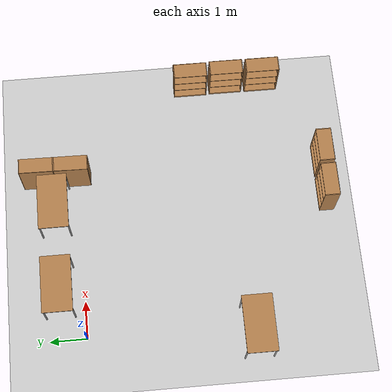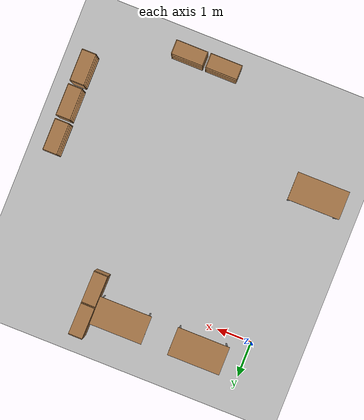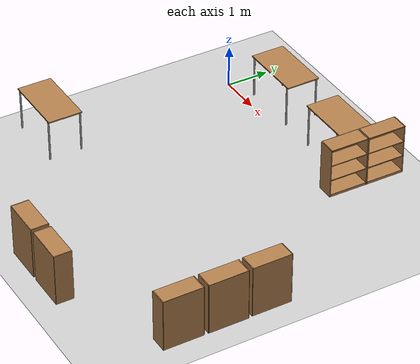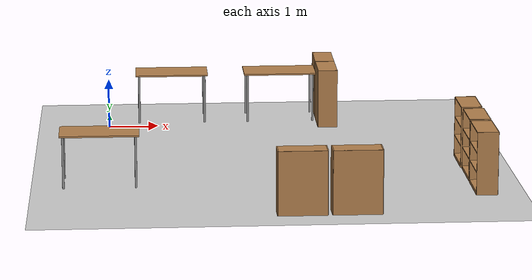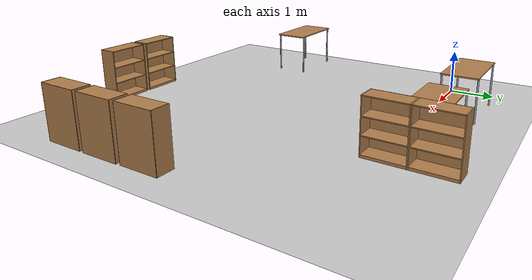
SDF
<sdf version="1.7">
 <world name="default">
  <model name="ground_plane">
   <static>1</static>
   <link name="link">
    <collision name="collision">
     <geometry><plane><normal>0 0 1</normal><size>100 100</size></plane></geometry>
     <surface>
      <contact><collide_bitmask>65535</collide_bitmask></contact>
      <friction><ode><mu>100</mu><mu2>50</mu2></ode></friction>
     </surface>
    </collision>
    <visual name="visual">
     <cast_shadows>0</cast_shadows>
     <geometry><plane><normal>0 0 1</normal><size>100 100</size></plane></geometry>
     <material>
      <script><uri>file://media/materials/scripts/gazebo.material</uri><name>Gazebo/Grey</name></script>
     </material>
    </visual>
   </link>
  </model>
  <model name="bookshelf_0">
   <static>1</static>
   <link name="link">
    <inertial><mass>1</mass></inertial>
    <collision name="back">
     <pose>0 0.005 0.6 0 -0 0</pose>
     <geometry><box><size>0.9 0.01 1.2</size></box></geometry>
    </collision>
    <visual name="visual1">
     <pose>0 0.005 0.6 0 -0 0</pose>
     <geometry><box><size>0.9 0.01 1.2</size></box></geometry>
     <material>
      <script><uri>file://media/materials/scripts/gazebo.material</uri><name>Gazebo/Wood</name></script>
     </material>
    </visual>
    <collision name="left_side">
     <pose>0.45 -0.195 0.6 0 -0 0</pose>
     <geometry><box><size>0.02 0.4 1.2</size></box></geometry>
    </collision>
    <visual name="visual2">
     <pose>0.45 -0.195 0.6 0 -0 0</pose>
     <geometry><box><size>0.02 0.4 1.2</size></box></geometry>
     <material>
      <script><uri>file://media/materials/scripts/gazebo.material</uri><name>Gazebo/Wood</name></script>
     </material>
    </visual>
    <collision name="right_side">
     <pose>-0.45 -0.195 0.6 0 -0 0</pose>
     <geometry><box><size>0.02 0.4 1.2</size></box></geometry>
    </collision>
    <visual name="visual3">
     <pose>-0.45 -0.195 0.6 0 -0 0</pose>
     <geometry><box><size>0.02 0.4 1.2</size></box></geometry>
     <material>
      <script><uri>file://media/materials/scripts/gazebo.material</uri><name>Gazebo/Wood</name></script>
     </material>
    </visual>
    <collision name="bottom">
     <pose>0 -0.195 0.03 0 -0 0</pose>
     <geometry><box><size>0.88 0.4 0.06</size></box></geometry>
    </collision>
    <visual name="visual4">
     <pose>0 -0.195 0.03 0 -0 0</pose>
     <geometry><box><size>0.88 0.4 0.06</size></box></geometry>
     <material>
      <script><uri>file://media/materials/scripts/gazebo.material</uri><name>Gazebo/Wood</name></script>
     </material>
    </visual>
    <collision name="top">
     <pose>0 -0.195 1.19 0 -0 0</pose>
     <geometry><box><size>0.88 0.4 0.02</size></box></geometry>
    </collision>
    <visual name="visual5">
     <pose>0 -0.195 1.19 0 -0 0</pose>
     <geometry><box><size>0.88 0.4 0.02</size></box></geometry>
     <material>
      <script><uri>file://media/materials/scripts/gazebo.material</uri><name>Gazebo/Wood</name></script>
     </material>
    </visual>
    <collision name="low_shelf">
     <pose>0 -0.195 0.43 0 -0 0</pose>
     <geometry><box><size>0.88 0.4 0.02</size></box></geometry>
    </collision>
    <visual name="visual6">
     <pose>0 -0.195 0.43 0 -0 0</pose>
     <geometry><box><size>0.88 0.4 0.02</size></box></geometry>
     <material>
      <script><uri>file://media/materials/scripts/gazebo.material</uri><name>Gazebo/Wood</name></script>
     </material>
    </visual>
    <collision name="high_shelf">
     <pose>0 -0.195 0.8 0 -0 0</pose>
     <geometry><box><size>0.88 0.4 0.02</size></box></geometry>
    </collision>
    <visual name="visual7">
     <pose>0 -0.195 0.8 0 -0 0</pose>
     <geometry><box><size>0.88 0.4 0.02</size></box></geometry>
     <material>
      <script><uri>file://media/materials/scripts/gazebo.material</uri><name>Gazebo/Wood</name></script>
     </material>
    </visual>
   </link>
   <pose>7.19944 -5.29894 0 0 0 -1.57322</pose>
  </model>
  <model name="bookshelf_0_clone">
   <static>1</static>
   <link name="link">
    <inertial><mass>1</mass></inertial>
    <collision name="back">
     <pose>0 0.005 0.6 0 -0 0</pose>
     <geometry><box><size>0.9 0.01 1.2</size></box></geometry>
    </collision>
    <visual name="visual1">
     <pose>0 0.005 0.6 0 -0 0</pose>
     <geometry><box><size>0.9 0.01 1.2</size></box></geometry>
     <material>
      <script><uri>file://media/materials/scripts/gazebo.material</uri><name>Gazebo/Wood</name></script>
     </material>
    </visual>
    <collision name="left_side">
     <pose>0.45 -0.195 0.6 0 -0 0</pose>
     <geometry><box><size>0.02 0.4 1.2</size></box></geometry>
    </collision>
    <visual name="visual2">
     <pose>0.45 -0.195 0.6 0 -0 0</pose>
     <geometry><box><size>0.02 0.4 1.2</size></box></geometry>
     <material>
      <script><uri>file://media/materials/scripts/gazebo.material</uri><name>Gazebo/Wood</name></script>
     </material>
    </visual>
    <collision name="right_side">
     <pose>-0.45 -0.195 0.6 0 -0 0</pose>
     <geometry><box><size>0.02 0.4 1.2</size></box></geometry>
    </collision>
    <visual name="visual3">
     <pose>-0.45 -0.195 0.6 0 -0 0</pose>
     <geometry><box><size>0.02 0.4 1.2</size></box></geometry>
     <material>
      <script><uri>file://media/materials/scripts/gazebo.material</uri><name>Gazebo/Wood</name></script>
     </material>
    </visual>
    <collision name="bottom">
     <pose>0 -0.195 0.03 0 -0 0</pose>
     <geometry><box><size>0.88 0.4 0.06</size></box></geometry>
    </collision>
    <visual name="visual4">
     <pose>0 -0.195 0.03 0 -0 0</pose>
     <geometry><box><size>0.88 0.4 0.06</size></box></geometry>
     <material>
      <script><uri>file://media/materials/scripts/gazebo.material</uri><name>Gazebo/Wood</name></script>
     </material>
    </visual>
    <collision name="top">
     <pose>0 -0.195 1.19 0 -0 0</pose>
     <geometry><box><size>0.88 0.4 0.02</size></box></geometry>
    </collision>
    <visual name="visual5">
     <pose>0 -0.195 1.19 0 -0 0</pose>
     <geometry><box><size>0.88 0.4 0.02</size></box></geometry>
     <material>
      <script><uri>file://media/materials/scripts/gazebo.material</uri><name>Gazebo/Wood</name></script>
     </material>
    </visual>
    <collision name="low_shelf">
     <pose>0 -0.195 0.43 0 -0 0</pose>
     <geometry><box><size>0.88 0.4 0.02</size></box></geometry>
    </collision>
    <visual name="visual6">
     <pose>0 -0.195 0.43 0 -0 0</pose>
     <geometry><box><size>0.88 0.4 0.02</size></box></geometry>
     <material>
      <script><uri>file://media/materials/scripts/gazebo.material</uri><name>Gazebo/Wood</name></script>
     </material>
    </visual>
    <collision name="high_shelf">
     <pose>0 -0.195 0.8 0 -0 0</pose>
     <geometry><box><size>0.88 0.4 0.02</size></box></geometry>
    </collision>
    <visual name="visual7">
     <pose>0 -0.195 0.8 0 -0 0</pose>
     <geometry><box><size>0.88 0.4 0.02</size></box></geometry>
     <material>
      <script><uri>file://media/materials/scripts/gazebo.material</uri><name>Gazebo/Wood</name></script>
     </material>
    </visual>
   </link>
   <pose>7.20434 -4.29627 0 0 0 -1.57322</pose>
  </model>
  <model name="bookshelf_0_clone_0">
   <static>1</static>
   <link name="link">
    <inertial><mass>1</mass></inertial>
    <collision name="back">
     <pose>0 0.005 0.6 0 -0 0</pose>
     <geometry><box><size>0.9 0.01 1.2</size></box></geometry>
    </collision>
    <visual name="visual1">
     <pose>0 0.005 0.6 0 -0 0</pose>
     <geometry><box><size>0.9 0.01 1.2</size></box></geometry>
     <material>
      <script><uri>file://media/materials/scripts/gazebo.material</uri><name>Gazebo/Wood</name></script>
     </material>
    </visual>
    <collision name="left_side">
     <pose>0.45 -0.195 0.6 0 -0 0</pose>
     <geometry><box><size>0.02 0.4 1.2</size></box></geometry>
    </collision>
    <visual name="visual2">
     <pose>0.45 -0.195 0.6 0 -0 0</pose>
     <geometry><box><size>0.02 0.4 1.2</size></box></geometry>
     <material>
      <script><uri>file://media/materials/scripts/gazebo.material</uri><name>Gazebo/Wood</name></script>
     </material>
    </visual>
    <collision name="right_side">
     <pose>-0.45 -0.195 0.6 0 -0 0</pose>
     <geometry><box><size>0.02 0.4 1.2</size></box></geometry>
    </collision>
    <visual name="visual3">
     <pose>-0.45 -0.195 0.6 0 -0 0</pose>
     <geometry><box><size>0.02 0.4 1.2</size></box></geometry>
     <material>
      <script><uri>file://media/materials/scripts/gazebo.material</uri><name>Gazebo/Wood</name></script>
     </material>
    </visual>
    <collision name="bottom">
     <pose>0 -0.195 0.03 0 -0 0</pose>
     <geometry><box><size>0.88 0.4 0.06</size></box></geometry>
    </collision>
    <visual name="visual4">
     <pose>0 -0.195 0.03 0 -0 0</pose>
     <geometry><box><size>0.88 0.4 0.06</size></box></geometry>
     <material>
      <script><uri>file://media/materials/scripts/gazebo.material</uri><name>Gazebo/Wood</name></script>
     </material>
    </visual>
    <collision name="top">
     <pose>0 -0.195 1.19 0 -0 0</pose>
     <geometry><box><size>0.88 0.4 0.02</size></box></geometry>
    </collision>
    <visual name="visual5">
     <pose>0 -0.195 1.19 0 -0 0</pose>
     <geometry><box><size>0.88 0.4 0.02</size></box></geometry>
     <material>
      <script><uri>file://media/materials/scripts/gazebo.material</uri><name>Gazebo/Wood</name></script>
     </material>
    </visual>
    <collision name="low_shelf">
     <pose>0 -0.195 0.43 0 -0 0</pose>
     <geometry><box><size>0.88 0.4 0.02</size></box></geometry>
    </collision>
    <visual name="visual6">
     <pose>0 -0.195 0.43 0 -0 0</pose>
     <geometry><box><size>0.88 0.4 0.02</size></box></geometry>
     <material>
      <script><uri>file://media/materials/scripts/gazebo.material</uri><name>Gazebo/Wood</name></script>
     </material>
    </visual>
    <collision name="high_shelf">
     <pose>0 -0.195 0.8 0 -0 0</pose>
     <geometry><box><size>0.88 0.4 0.02</size></box></geometry>
    </collision>
    <visual name="visual7">
     <pose>0 -0.195 0.8 0 -0 0</pose>
     <geometry><box><size>0.88 0.4 0.02</size></box></geometry>
     <material>
      <script><uri>file://media/materials/scripts/gazebo.material</uri><name>Gazebo/Wood</name></script>
     </material>
    </visual>
   </link>
   <pose>7.19029 -3.29895 0 0 0 -1.57322</pose>
  </model>
  <model name="table_clone">
   <static>1</static>
   <link name="link">
    <collision name="surface">
     <pose>0 0 1 0 -0 0</pose>
     <geometry><box><size>1.5 0.8 0.03</size></box></geometry>
     <surface><friction><ode><mu>0.6</mu><mu2>0.6</mu2></ode></friction></surface>
    </collision>
    <visual name="visual1">
     <pose>0 0 1 0 -0 0</pose>
     <geometry><box><size>1.5 0.8 0.03</size></box></geometry>
     <material>
      <script><uri>file://media/materials/scripts/gazebo.material</uri><name>Gazebo/Wood</name></script>
     </material>
    </visual>
    <collision name="front_left_leg">
     <pose>0.68 0.38 0.5 0 -0 0</pose>
     <geometry><cylinder><radius>0.02</radius><length>1</length></cylinder></geometry>
    </collision>
    <visual name="front_left_leg">
     <pose>0.68 0.38 0.5 0 -0 0</pose>
     <geometry><cylinder><radius>0.02</radius><length>1</length></cylinder></geometry>
     <material>
      <script><uri>file://media/materials/scripts/gazebo.material</uri><name>Gazebo/Grey</name></script>
     </material>
    </visual>
    <collision name="front_right_leg">
     <pose>0.68 -0.38 0.5 0 -0 0</pose>
     <geometry><cylinder><radius>0.02</radius><length>1</length></cylinder></geometry>
    </collision>
    <visual name="front_right_leg">
     <pose>0.68 -0.38 0.5 0 -0 0</pose>
     <geometry><cylinder><radius>0.02</radius><length>1</length></cylinder></geometry>
     <material>
      <script><uri>file://media/materials/scripts/gazebo.material</uri><name>Gazebo/Grey</name></script>
     </material>
    </visual>
    <collision name="back_right_leg">
     <pose>-0.68 -0.38 0.5 0 -0 0</pose>
     <geometry><cylinder><radius>0.02</radius><length>1</length></cylinder></geometry>
    </collision>
    <visual name="back_right_leg">
     <pose>-0.68 -0.38 0.5 0 -0 0</pose>
     <geometry><cylinder><radius>0.02</radius><length>1</length></cylinder></geometry>
     <material>
      <script><uri>file://media/materials/scripts/gazebo.material</uri><name>Gazebo/Grey</name></script>
     </material>
    </visual>
    <collision name="back_left_leg">
     <pose>-0.68 0.38 0.5 0 -0 0</pose>
     <geometry><cylinder><radius>0.02</radius><length>1</length></cylinder></geometry>
    </collision>
    <visual name="back_left_leg">
     <pose>-0.68 0.38 0.5 0 -0 0</pose>
     <geometry><cylinder><radius>0.02</radius><length>1</length></cylinder></geometry>
     <material>
      <script><uri>file://media/materials/scripts/gazebo.material</uri><name>Gazebo/Grey</name></script>
     </material>
    </visual>
   </link>
   <pose>-0.165435 -4.42616 0 0 -0 0</pose>
  </model>
  <model name="table_0">
   <static>1</static>
   <link name="link">
    <collision name="surface">
     <pose>0 0 1 0 -0 0</pose>
     <geometry><box><size>1.5 0.8 0.03</size></box></geometry>
     <surface><friction><ode><mu>0.6</mu><mu2>0.6</mu2></ode></friction></surface>
    </collision>
    <visual name="visual1">
     <pose>0 0 1 0 -0 0</pose>
     <geometry><box><size>1.5 0.8 0.03</size></box></geometry>
     <material>
      <script><uri>file://media/materials/scripts/gazebo.material</uri><name>Gazebo/Wood</name></script>
     </material>
    </visual>
    <collision name="front_left_leg">
     <pose>0.68 0.38 0.5 0 -0 0</pose>
     <geometry><cylinder><radius>0.02</radius><length>1</length></cylinder></geometry>
    </collision>
    <visual name="front_left_leg">
     <pose>0.68 0.38 0.5 0 -0 0</pose>
     <geometry><cylinder><radius>0.02</radius><length>1</length></cylinder></geometry>
     <material>
      <script><uri>file://media/materials/scripts/gazebo.material</uri><name>Gazebo/Grey</name></script>
     </material>
    </visual>
    <collision name="front_right_leg">
     <pose>0.68 -0.38 0.5 0 -0 0</pose>
     <geometry><cylinder><radius>0.02</radius><length>1</length></cylinder></geometry>
    </collision>
    <visual name="front_right_leg">
     <pose>0.68 -0.38 0.5 0 -0 0</pose>
     <geometry><cylinder><radius>0.02</radius><length>1</length></cylinder></geometry>
     <material>
      <script><uri>file://media/materials/scripts/gazebo.material</uri><name>Gazebo/Grey</name></script>
     </material>
    </visual>
    <collision name="back_right_leg">
     <pose>-0.68 -0.38 0.5 0 -0 0</pose>
     <geometry><cylinder><radius>0.02</radius><length>1</length></cylinder></geometry>
    </collision>
    <visual name="back_right_leg">
     <pose>-0.68 -0.38 0.5 0 -0 0</pose>
     <geometry><cylinder><radius>0.02</radius><length>1</length></cylinder></geometry>
     <material>
      <script><uri>file://media/materials/scripts/gazebo.material</uri><name>Gazebo/Grey</name></script>
     </material>
    </visual>
    <collision name="back_left_leg">
     <pose>-0.68 0.38 0.5 0 -0 0</pose>
     <geometry><cylinder><radius>0.02</radius><length>1</length></cylinder></geometry>
    </collision>
    <visual name="back_left_leg">
     <pose>-0.68 0.38 0.5 0 -0 0</pose>
     <geometry><cylinder><radius>0.02</radius><length>1</length></cylinder></geometry>
     <material>
      <script><uri>file://media/materials/scripts/gazebo.material</uri><name>Gazebo/Grey</name></script>
     </material>
    </visual>
   </link>
   <pose>1.30533 0.663645 0 0 -0 0</pose>
  </model>
  <model name="table_0_clone">
   <static>1</static>
   <link name="link">
    <collision name="surface">
     <pose>0 0 1 0 -0 0</pose>
     <geometry><box><size>1.5 0.8 0.03</size></box></geometry>
     <surface><friction><ode><mu>0.6</mu><mu2>0.6</mu2></ode></friction></surface>
    </collision>
    <visual name="visual1">
     <pose>0 0 1 0 -0 0</pose>
     <geometry><box><size>1.5 0.8 0.03</size></box></geometry>
     <material>
      <script><uri>file://media/materials/scripts/gazebo.material</uri><name>Gazebo/Wood</name></script>
     </material>
    </visual>
    <collision name="front_left_leg">
     <pose>0.68 0.38 0.5 0 -0 0</pose>
     <geometry><cylinder><radius>0.02</radius><length>1</length></cylinder></geometry>
    </collision>
    <visual name="front_left_leg">
     <pose>0.68 0.38 0.5 0 -0 0</pose>
     <geometry><cylinder><radius>0.02</radius><length>1</length></cylinder></geometry>
     <material>
      <script><uri>file://media/materials/scripts/gazebo.material</uri><name>Gazebo/Grey</name></script>
     </material>
    </visual>
    <collision name="front_right_leg">
     <pose>0.68 -0.38 0.5 0 -0 0</pose>
     <geometry><cylinder><radius>0.02</radius><length>1</length></cylinder></geometry>
    </collision>
    <visual name="front_right_leg">
     <pose>0.68 -0.38 0.5 0 -0 0</pose>
     <geometry><cylinder><radius>0.02</radius><length>1</length></cylinder></geometry>
     <material>
      <script><uri>file://media/materials/scripts/gazebo.material</uri><name>Gazebo/Grey</name></script>
     </material>
    </visual>
    <collision name="back_right_leg">
     <pose>-0.68 -0.38 0.5 0 -0 0</pose>
     <geometry><cylinder><radius>0.02</radius><length>1</length></cylinder></geometry>
    </collision>
    <visual name="back_right_leg">
     <pose>-0.68 -0.38 0.5 0 -0 0</pose>
     <geometry><cylinder><radius>0.02</radius><length>1</length></cylinder></geometry>
     <material>
      <script><uri>file://media/materials/scripts/gazebo.material</uri><name>Gazebo/Grey</name></script>
     </material>
    </visual>
    <collision name="back_left_leg">
     <pose>-0.68 0.38 0.5 0 -0 0</pose>
     <geometry><cylinder><radius>0.02</radius><length>1</length></cylinder></geometry>
    </collision>
    <visual name="back_left_leg">
     <pose>-0.68 0.38 0.5 0 -0 0</pose>
     <geometry><cylinder><radius>0.02</radius><length>1</length></cylinder></geometry>
     <material>
      <script><uri>file://media/materials/scripts/gazebo.material</uri><name>Gazebo/Grey</name></script>
     </material>
    </visual>
   </link>
   <pose>3.56657 0.665775 0 0 -0 0</pose>
  </model>
  <model name="bookshelf_1">
   <static>1</static>
   <link name="link">
    <inertial><mass>1</mass></inertial>
    <collision name="back">
     <pose>0 0.005 0.6 0 -0 0</pose>
     <geometry><box><size>0.9 0.01 1.2</size></box></geometry>
    </collision>
    <visual name="visual1">
     <pose>0 0.005 0.6 0 -0 0</pose>
     <geometry><box><size>0.9 0.01 1.2</size></box></geometry>
     <material>
      <script><uri>file://media/materials/scripts/gazebo.material</uri><name>Gazebo/Wood</name></script>
     </material>
    </visual>
    <collision name="left_side">
     <pose>0.45 -0.195 0.6 0 -0 0</pose>
     <geometry><box><size>0.02 0.4 1.2</size></box></geometry>
    </collision>
    <visual name="visual2">
     <pose>0.45 -0.195 0.6 0 -0 0</pose>
     <geometry><box><size>0.02 0.4 1.2</size></box></geometry>
     <material>
      <script><uri>file://media/materials/scripts/gazebo.material</uri><name>Gazebo/Wood</name></script>
     </material>
    </visual>
    <collision name="right_side">
     <pose>-0.45 -0.195 0.6 0 -0 0</pose>
     <geometry><box><size>0.02 0.4 1.2</size></box></geometry>
    </collision>
    <visual name="visual3">
     <pose>-0.45 -0.195 0.6 0 -0 0</pose>
     <geometry><box><size>0.02 0.4 1.2</size></box></geometry>
     <material>
      <script><uri>file://media/materials/scripts/gazebo.material</uri><name>Gazebo/Wood</name></script>
     </material>
    </visual>
    <collision name="bottom">
     <pose>0 -0.195 0.03 0 -0 0</pose>
     <geometry><box><size>0.88 0.4 0.06</size></box></geometry>
    </collision>
    <visual name="visual4">
     <pose>0 -0.195 0.03 0 -0 0</pose>
     <geometry><box><size>0.88 0.4 0.06</size></box></geometry>
     <material>
      <script><uri>file://media/materials/scripts/gazebo.material</uri><name>Gazebo/Wood</name></script>
     </material>
    </visual>
    <collision name="top">
     <pose>0 -0.195 1.19 0 -0 0</pose>
     <geometry><box><size>0.88 0.4 0.02</size></box></geometry>
    </collision>
    <visual name="visual5">
     <pose>0 -0.195 1.19 0 -0 0</pose>
     <geometry><box><size>0.88 0.4 0.02</size></box></geometry>
     <material>
      <script><uri>file://media/materials/scripts/gazebo.material</uri><name>Gazebo/Wood</name></script>
     </material>
    </visual>
    <collision name="low_shelf">
     <pose>0 -0.195 0.43 0 -0 0</pose>
     <geometry><box><size>0.88 0.4 0.02</size></box></geometry>
    </collision>
    <visual name="visual6">
     <pose>0 -0.195 0.43 0 -0 0</pose>
     <geometry><box><size>0.88 0.4 0.02</size></box></geometry>
     <material>
      <script><uri>file://media/materials/scripts/gazebo.material</uri><name>Gazebo/Wood</name></script>
     </material>
    </visual>
    <collision name="high_shelf">
     <pose>0 -0.195 0.8 0 -0 0</pose>
     <geometry><box><size>0.88 0.4 0.02</size></box></geometry>
    </collision>
    <visual name="visual7">
     <pose>0 -0.195 0.8 0 -0 0</pose>
     <geometry><box><size>0.88 0.4 0.02</size></box></geometry>
     <material>
      <script><uri>file://media/materials/scripts/gazebo.material</uri><name>Gazebo/Wood</name></script>
     </material>
    </visual>
   </link>
   <pose>4.33671 1.05273 0 0 -0 1.55645</pose>
  </model>
  <model name="bookshelf_1_clone">
   <static>1</static>
   <link name="link">
    <inertial><mass>1</mass></inertial>
    <collision name="back">
     <pose>0 0.005 0.6 0 -0 0</pose>
     <geometry><box><size>0.9 0.01 1.2</size></box></geometry>
    </collision>
    <visual name="visual1">
     <pose>0 0.005 0.6 0 -0 0</pose>
     <geometry><box><size>0.9 0.01 1.2</size></box></geometry>
     <material>
      <script><uri>file://media/materials/scripts/gazebo.material</uri><name>Gazebo/Wood</name></script>
     </material>
    </visual>
    <collision name="left_side">
     <pose>0.45 -0.195 0.6 0 -0 0</pose>
     <geometry><box><size>0.02 0.4 1.2</size></box></geometry>
    </collision>
    <visual name="visual2">
     <pose>0.45 -0.195 0.6 0 -0 0</pose>
     <geometry><box><size>0.02 0.4 1.2</size></box></geometry>
     <material>
      <script><uri>file://media/materials/scripts/gazebo.material</uri><name>Gazebo/Wood</name></script>
     </material>
    </visual>
    <collision name="right_side">
     <pose>-0.45 -0.195 0.6 0 -0 0</pose>
     <geometry><box><size>0.02 0.4 1.2</size></box></geometry>
    </collision>
    <visual name="visual3">
     <pose>-0.45 -0.195 0.6 0 -0 0</pose>
     <geometry><box><size>0.02 0.4 1.2</size></box></geometry>
     <material>
      <script><uri>file://media/materials/scripts/gazebo.material</uri><name>Gazebo/Wood</name></script>
     </material>
    </visual>
    <collision name="bottom">
     <pose>0 -0.195 0.03 0 -0 0</pose>
     <geometry><box><size>0.88 0.4 0.06</size></box></geometry>
    </collision>
    <visual name="visual4">
     <pose>0 -0.195 0.03 0 -0 0</pose>
     <geometry><box><size>0.88 0.4 0.06</size></box></geometry>
     <material>
      <script><uri>file://media/materials/scripts/gazebo.material</uri><name>Gazebo/Wood</name></script>
     </material>
    </visual>
    <collision name="top">
     <pose>0 -0.195 1.19 0 -0 0</pose>
     <geometry><box><size>0.88 0.4 0.02</size></box></geometry>
    </collision>
    <visual name="visual5">
     <pose>0 -0.195 1.19 0 -0 0</pose>
     <geometry><box><size>0.88 0.4 0.02</size></box></geometry>
     <material>
      <script><uri>file://media/materials/scripts/gazebo.material</uri><name>Gazebo/Wood</name></script>
     </material>
    </visual>
    <collision name="low_shelf">
     <pose>0 -0.195 0.43 0 -0 0</pose>
     <geometry><box><size>0.88 0.4 0.02</size></box></geometry>
    </collision>
    <visual name="visual6">
     <pose>0 -0.195 0.43 0 -0 0</pose>
     <geometry><box><size>0.88 0.4 0.02</size></box></geometry>
     <material>
      <script><uri>file://media/materials/scripts/gazebo.material</uri><name>Gazebo/Wood</name></script>
     </material>
    </visual>
    <collision name="high_shelf">
     <pose>0 -0.195 0.8 0 -0 0</pose>
     <geometry><box><size>0.88 0.4 0.02</size></box></geometry>
    </collision>
    <visual name="visual7">
     <pose>0 -0.195 0.8 0 -0 0</pose>
     <geometry><box><size>0.88 0.4 0.02</size></box></geometry>
     <material>
      <script><uri>file://media/materials/scripts/gazebo.material</uri><name>Gazebo/Wood</name></script>
     </material>
    </visual>
   </link>
   <pose>4.32389 0.132101 0 0 -0 1.55645</pose>
  </model>
  <model name="bookshelf_clone_clone">
   <static>1</static>
   <link name="link">
    <inertial><mass>1</mass></inertial>
    <collision name="back">
     <pose>0 0.005 0.6 0 -0 0</pose>
     <geometry><box><size>0.9 0.01 1.2</size></box></geometry>
    </collision>
    <visual name="visual1">
     <pose>0 0.005 0.6 0 -0 0</pose>
     <geometry><box><size>0.9 0.01 1.2</size></box></geometry>
     <material>
      <script><uri>file://media/materials/scripts/gazebo.material</uri><name>Gazebo/Wood</name></script>
     </material>
    </visual>
    <collision name="left_side">
     <pose>0.45 -0.195 0.6 0 -0 0</pose>
     <geometry><box><size>0.02 0.4 1.2</size></box></geometry>
    </collision>
    <visual name="visual2">
     <pose>0.45 -0.195 0.6 0 -0 0</pose>
     <geometry><box><size>0.02 0.4 1.2</size></box></geometry>
     <material>
      <script><uri>file://media/materials/scripts/gazebo.material</uri><name>Gazebo/Wood</name></script>
     </material>
    </visual>
    <collision name="right_side">
     <pose>-0.45 -0.195 0.6 0 -0 0</pose>
     <geometry><box><size>0.02 0.4 1.2</size></box></geometry>
    </collision>
    <visual name="visual3">
     <pose>-0.45 -0.195 0.6 0 -0 0</pose>
     <geometry><box><size>0.02 0.4 1.2</size></box></geometry>
     <material>
      <script><uri>file://media/materials/scripts/gazebo.material</uri><name>Gazebo/Wood</name></script>
     </material>
    </visual>
    <collision name="bottom">
     <pose>0 -0.195 0.03 0 -0 0</pose>
     <geometry><box><size>0.88 0.4 0.06</size></box></geometry>
    </collision>
    <visual name="visual4">
     <pose>0 -0.195 0.03 0 -0 0</pose>
     <geometry><box><size>0.88 0.4 0.06</size></box></geometry>
     <material>
      <script><uri>file://media/materials/scripts/gazebo.material</uri><name>Gazebo/Wood</name></script>
     </material>
    </visual>
    <collision name="top">
     <pose>0 -0.195 1.19 0 -0 0</pose>
     <geometry><box><size>0.88 0.4 0.02</size></box></geometry>
    </collision>
    <visual name="visual5">
     <pose>0 -0.195 1.19 0 -0 0</pose>
     <geometry><box><size>0.88 0.4 0.02</size></box></geometry>
     <material>
      <script><uri>file://media/materials/scripts/gazebo.material</uri><name>Gazebo/Wood</name></script>
     </material>
    </visual>
    <collision name="low_shelf">
     <pose>0 -0.195 0.43 0 -0 0</pose>
     <geometry><box><size>0.88 0.4 0.02</size></box></geometry>
    </collision>
    <visual name="visual6">
     <pose>0 -0.195 0.43 0 -0 0</pose>
     <geometry><box><size>0.88 0.4 0.02</size></box></geometry>
     <material>
      <script><uri>file://media/materials/scripts/gazebo.material</uri><name>Gazebo/Wood</name></script>
     </material>
    </visual>
    <collision name="high_shelf">
     <pose>0 -0.195 0.8 0 -0 0</pose>
     <geometry><box><size>0.88 0.4 0.02</size></box></geometry>
    </collision>
    <visual name="visual7">
     <pose>0 -0.195 0.8 0 -0 0</pose>
     <geometry><box><size>0.88 0.4 0.02</size></box></geometry>
     <material>
      <script><uri>file://media/materials/scripts/gazebo.material</uri><name>Gazebo/Wood</name></script>
     </material>
    </visual>
   </link>
   <pose>3.48927 -6.90714 0 0 -0 3.14074</pose>
  </model>
  <model name="bookshelf_clone_clone_0">
   <static>1</static>
   <link name="link">
    <inertial><mass>1</mass></inertial>
    <collision name="back">
     <pose>0 0.005 0.6 0 -0 0</pose>
     <geometry><box><size>0.9 0.01 1.2</size></box></geometry>
    </collision>
    <visual name="visual1">
     <pose>0 0.005 0.6 0 -0 0</pose>
     <geometry><box><size>0.9 0.01 1.2</size></box></geometry>
     <material>
      <script><uri>file://media/materials/scripts/gazebo.material</uri><name>Gazebo/Wood</name></script>
     </material>
    </visual>
    <collision name="left_side">
     <pose>0.45 -0.195 0.6 0 -0 0</pose>
     <geometry><box><size>0.02 0.4 1.2</size></box></geometry>
    </collision>
    <visual name="visual2">
     <pose>0.45 -0.195 0.6 0 -0 0</pose>
     <geometry><box><size>0.02 0.4 1.2</size></box></geometry>
     <material>
      <script><uri>file://media/materials/scripts/gazebo.material</uri><name>Gazebo/Wood</name></script>
     </material>
    </visual>
    <collision name="right_side">
     <pose>-0.45 -0.195 0.6 0 -0 0</pose>
     <geometry><box><size>0.02 0.4 1.2</size></box></geometry>
    </collision>
    <visual name="visual3">
     <pose>-0.45 -0.195 0.6 0 -0 0</pose>
     <geometry><box><size>0.02 0.4 1.2</size></box></geometry>
     <material>
      <script><uri>file://media/materials/scripts/gazebo.material</uri><name>Gazebo/Wood</name></script>
     </material>
    </visual>
    <collision name="bottom">
     <pose>0 -0.195 0.03 0 -0 0</pose>
     <geometry><box><size>0.88 0.4 0.06</size></box></geometry>
    </collision>
    <visual name="visual4">
     <pose>0 -0.195 0.03 0 -0 0</pose>
     <geometry><box><size>0.88 0.4 0.06</size></box></geometry>
     <material>
      <script><uri>file://media/materials/scripts/gazebo.material</uri><name>Gazebo/Wood</name></script>
     </material>
    </visual>
    <collision name="top">
     <pose>0 -0.195 1.19 0 -0 0</pose>
     <geometry><box><size>0.88 0.4 0.02</size></box></geometry>
    </collision>
    <visual name="visual5">
     <pose>0 -0.195 1.19 0 -0 0</pose>
     <geometry><box><size>0.88 0.4 0.02</size></box></geometry>
     <material>
      <script><uri>file://media/materials/scripts/gazebo.material</uri><name>Gazebo/Wood</name></script>
     </material>
    </visual>
    <collision name="low_shelf">
     <pose>0 -0.195 0.43 0 -0 0</pose>
     <geometry><box><size>0.88 0.4 0.02</size></box></geometry>
    </collision>
    <visual name="visual6">
     <pose>0 -0.195 0.43 0 -0 0</pose>
     <geometry><box><size>0.88 0.4 0.02</size></box></geometry>
     <material>
      <script><uri>file://media/materials/scripts/gazebo.material</uri><name>Gazebo/Wood</name></script>
     </material>
    </visual>
    <collision name="high_shelf">
     <pose>0 -0.195 0.8 0 -0 0</pose>
     <geometry><box><size>0.88 0.4 0.02</size></box></geometry>
    </collision>
    <visual name="visual7">
     <pose>0 -0.195 0.8 0 -0 0</pose>
     <geometry><box><size>0.88 0.4 0.02</size></box></geometry>
     <material>
      <script><uri>file://media/materials/scripts/gazebo.material</uri><name>Gazebo/Wood</name></script>
     </material>
    </visual>
   </link>
   <pose>4.4823 -6.90765 0 0 -0 3.14074</pose>
  </model>
 </world>
</sdf>
